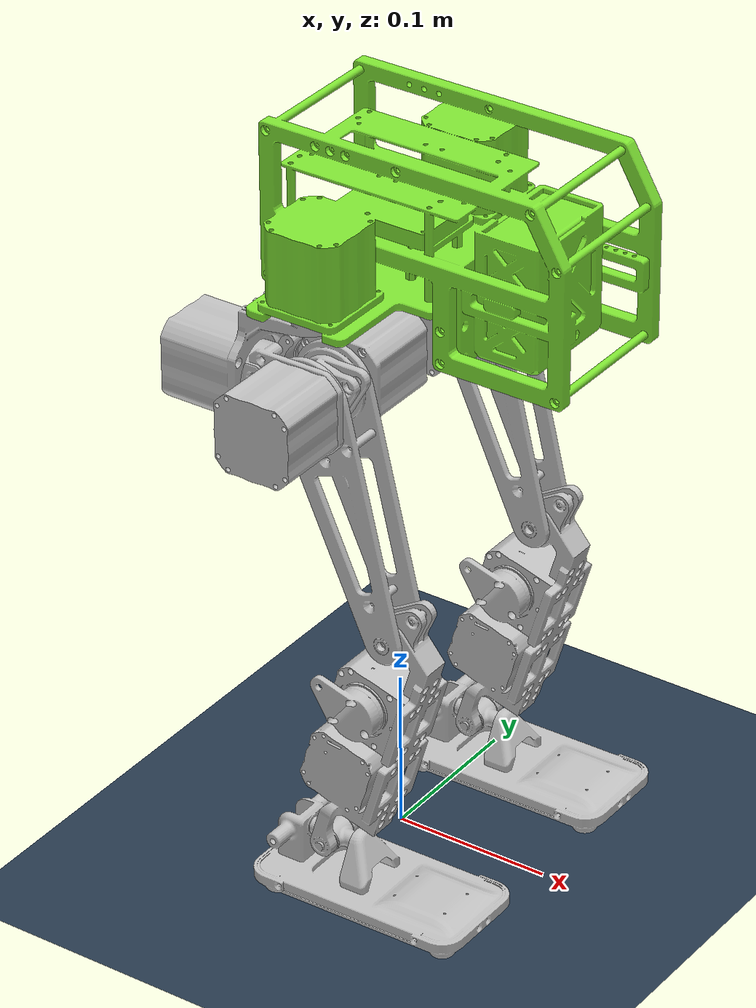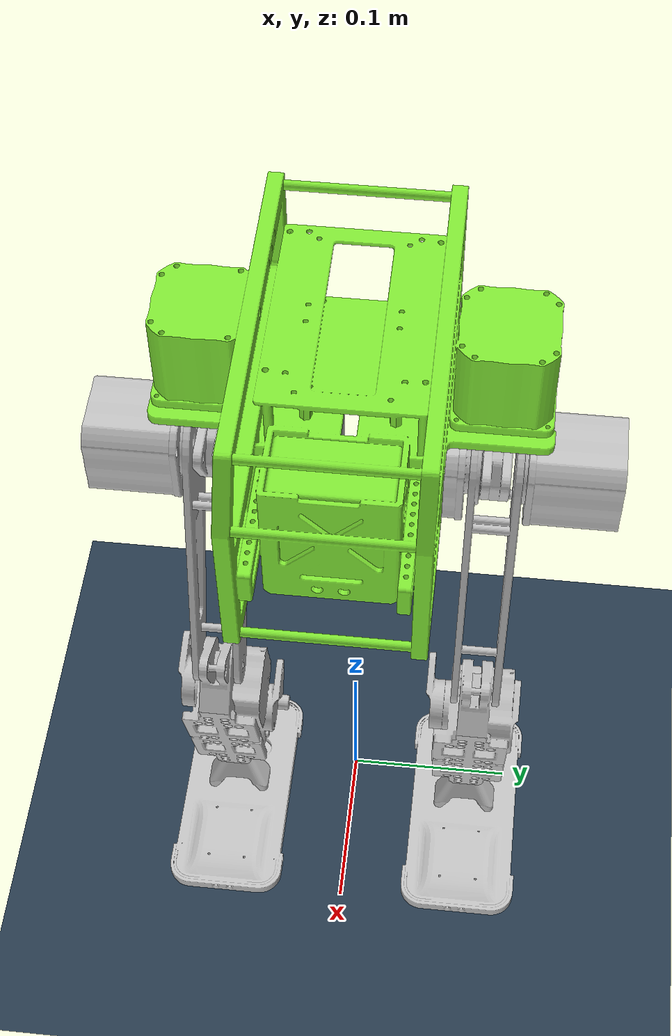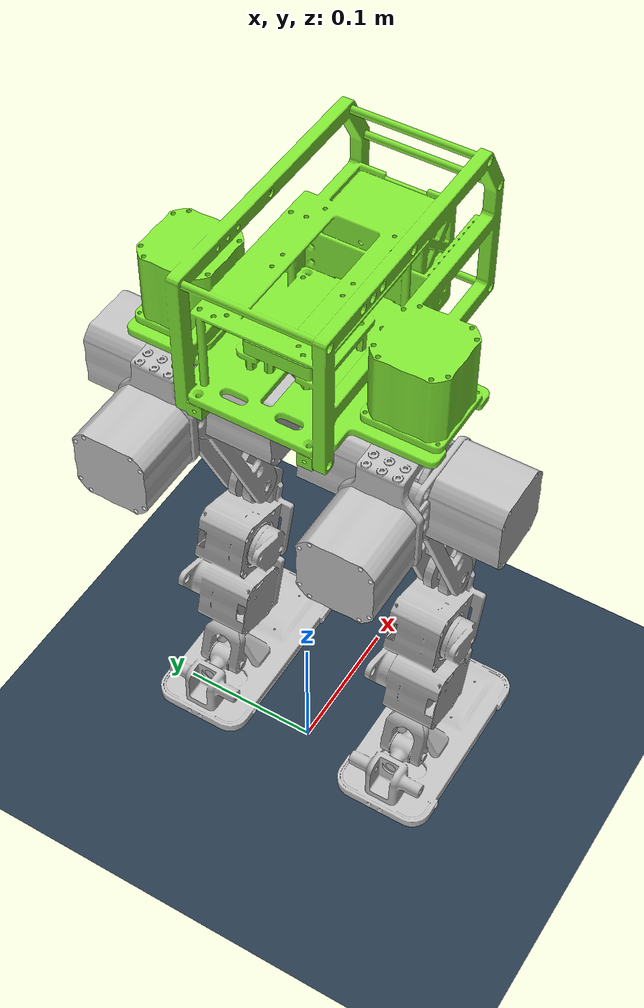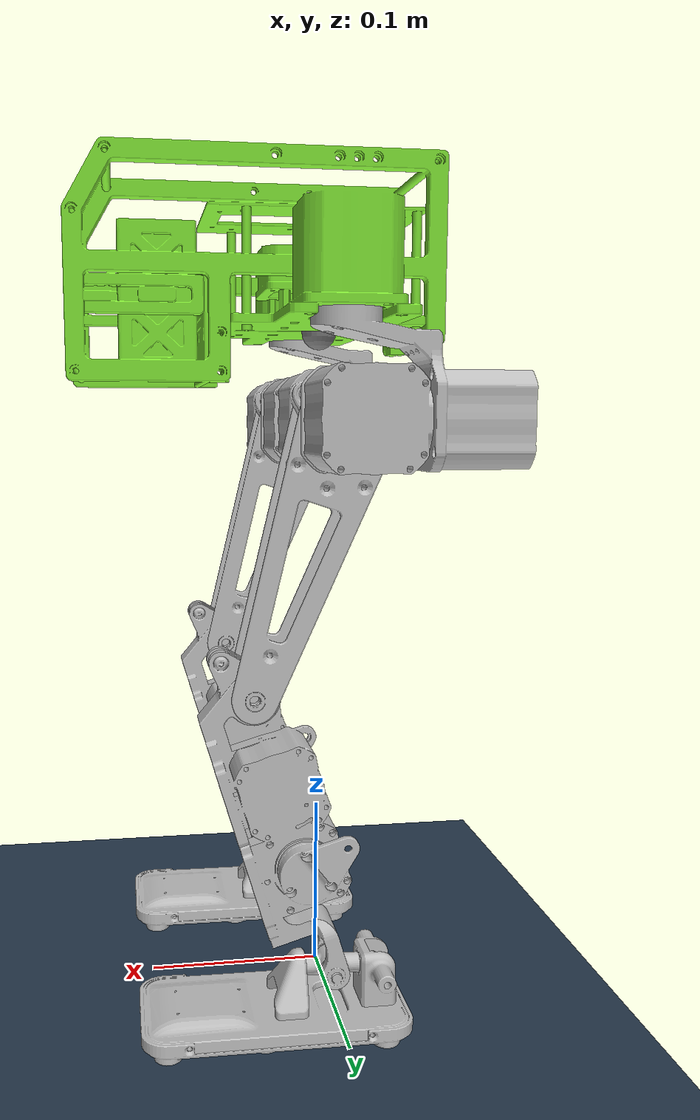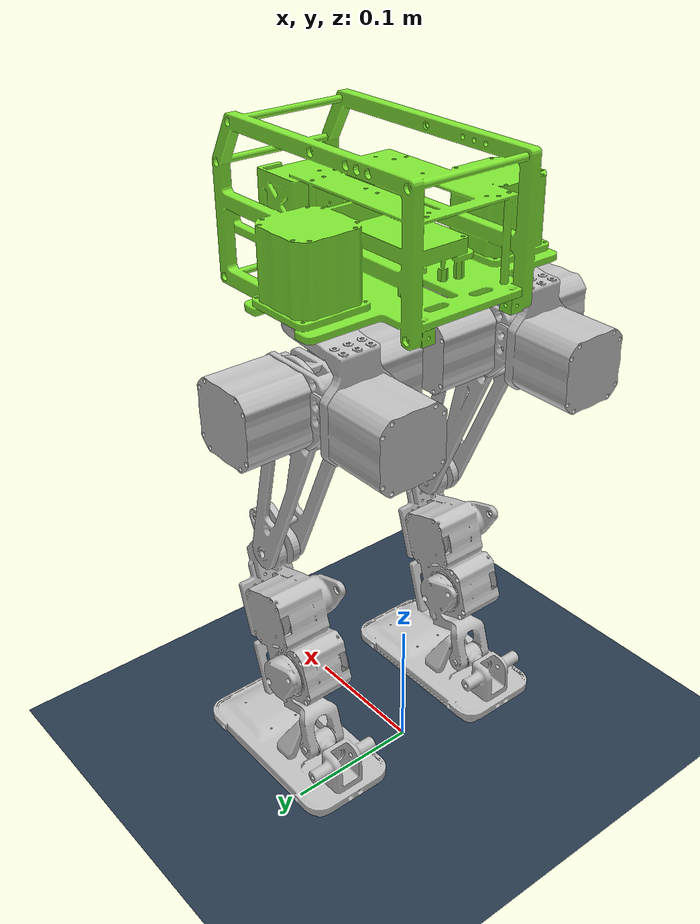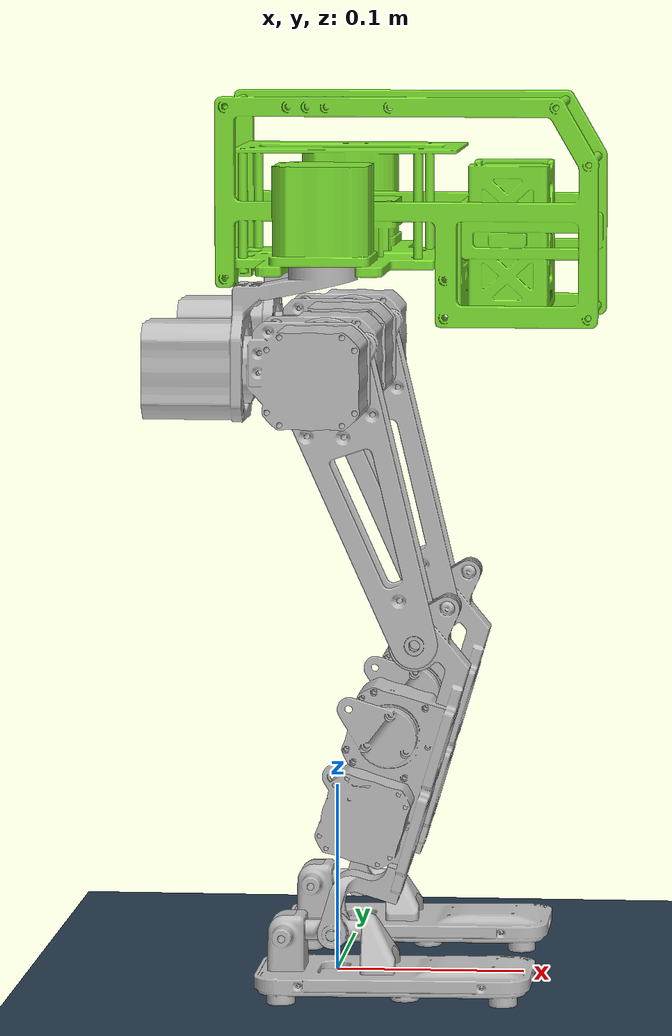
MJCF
<mujoco model="pai_12dof_v2_0312">
  <compiler angle="radian" meshdir="../meshes/" eulerseq="zyx"/>
    <option timestep='0.001' iterations='50' solver='PGS' gravity='0 0 -9.81'>
    <flag sensornoise="enable" frictionloss="enable"/>
    </option>
    <size njmax="500" nconmax="100" />

    <visual>
        <quality shadowsize='4096'/>
        <map znear='0.05'/>
    </visual>

    <default>
        <joint limited='true'/>
        <motor ctrllimited='true'/>
        <geom  condim='4' contype="1" conaffinity="15" solref='0.001 2' friction='0.9 0.2 0.2'/>
        <equality solref='0.001 2'/>
        <default class='visualgeom'>
            <geom material='visualgeom' condim='1' contype='0' conaffinity='0'/>
        </default>
        <default class='visualgeom2'>
            <geom material='visualgeom2' condim='1' contype='0' conaffinity='0'/>
        </default>
        <default class='obstacle'>
            <geom material='obstacle' condim='3' contype='1' conaffinity='15'/>
        </default>
    </default>
    <asset>
      <texture type="skybox" builtin="gradient" rgb1="0.3 0.5 0.7" rgb2="0 0 0" width="512" height="512"/>
      <texture name="texplane" type="2d" builtin="checker" rgb1=".2 .3 .4" rgb2=".1 0.15 0.2"
          width="512" height="512" mark="cross" markrgb=".8 .8 .8"/>
      <texture name="texplane2" type="2d" builtin="checker" rgb1="1 0.3137 0.1843" rgb2="0.0 0.30196 0.38039"
          width="512" height="512" mark="cross" markrgb=".8 .8 .8"/>

      <material name="matplane" reflectance="0." texture="texplane" texrepeat="1 1" texuniform="true"/>
      <material name="matplane2" reflectance="0.1" texture="texplane2" texrepeat="1 1" texuniform="true"/>

      <material name='obstacle'  rgba='0.9 0.6 0.2 1'/>
      <material name='visualgeom'  rgba='0.5 0.9 0.2 1'/>
      <material name='visualgeom2'  rgba='0.5 0.9 0.2 1'/>

      <mesh name="base_link" file="base_link.STL"/>
      <mesh name="r_hip_yaw_link" file="r_hip_yaw_link.STL"/>
      <mesh name="r_hip_roll_link" file="r_hip_roll_link.STL"/>
      <mesh name="r_thigh_link" file="r_thigh_link.STL"/>
      <mesh name="r_calf_link" file="r_calf_link.STL"/>
      <mesh name="r_ankle_pitch_link" file="r_ankle_pitch_link.STL"/>
      <mesh name="r_ankle_roll_link" file="r_ankle_roll_link.STL"/>
      <mesh name="l_hip_yaw_link" file="l_hip_yaw_link.STL"/>
      <mesh name="l_hip_roll_link" file="l_hip_roll_link.STL"/>
      <mesh name="l_thigh_link" file="l_thigh_link.STL"/>
      <mesh name="l_calf_link" file="l_calf_link.STL"/>
      <mesh name="l_ankle_pitch_link" file="l_ankle_pitch_link.STL"/>
      <mesh name="l_ankle_roll_link" file="l_ankle_roll_link.STL"/>

      <hfield name='hf0' nrow='200' ncol='200' size="10 5 0.2 .1"/>
      </asset>
  <worldbody>
    <light directional="true" diffuse=".4 .4 .4" specular="0.1 0.1 0.1" pos="0 0 5.0" dir="0 0 -1" castshadow="false"/>
    <light directional="true" diffuse=".6 .6 .6" specular="0.2 0.2 0.2" pos="0 0 4" dir="0 0 -1"/>
    <geom name="ground" type="plane" size="0 0 1" pos="0.001 0 0" quat="1 0 0 0" material="matplane" condim="1" conaffinity='15'/>

    <body name="base_link" pos="0.0 0.0 0.38">

      <geom type="mesh" mesh="base_link" group="1" class="visualgeom"/>

      <inertial pos="0.036389 -0.0000195 0.0235966" mass="1.4140796" diaginertia="0.0052145 0.0041695 0.007904" />
      <joint type='slide' axis='1 0 0' limited='false' />
      <joint type='slide' axis='0 1 0' limited='false' />
      <joint type='slide' axis='0 0 1' limited='false' />
      <joint type='ball' limited='false' />
      <site name='imu' size='0.01' pos='0.0 0 0.0'/>

      <geom type="mesh" contype="0" conaffinity="0" group="1" density="0" rgba="0.75294 0.75294 0.75294 1" mesh="base_link"/>
      <geom type="mesh" rgba="0.75294 0.75294 0.75294 1" mesh="base_link" class="visualgeom"/>

      <body name="r_hip_yaw_link" pos="0 -0.075 0">
        <inertial pos="-0.0578492 0 -0.0416749" quat="0.638398 0.304052 0.304052 0.638398" mass="0.388765" diaginertia="0.0004324 0.000431481 0.000133919"/>
        <joint name="right_hip_yaw_joint" pos="0 0 0" axis="0 0 1" limited="true" range="-1.6 0.75"/>
        <geom type="mesh" contype="0" conaffinity="0" group="1" density="0" rgba="0.75294 0.75294 0.75294 1" mesh="r_hip_yaw_link"/>
        <geom size="0.005 0.005 0.005" type="box" rgba="0.75294 0.75294 0.75294 1"/>
        <body name="r_hip_roll_link" pos="-0.04 0 -0.05">
          <inertial pos="0.0373373 0.0004272 0.0004287" quat="0.522079 0.520414 -0.478425 0.477192" mass="0.749522" diaginertia="0.00144387 0.00138144 0.000338391"/>
          <joint name="right_hip_roll_joint" pos="0 0 0" axis="1 0 0" limited="true" range="-1 0.5"/>
          <geom type="mesh" contype="0" conaffinity="0" group="1" density="0" rgba="0.75294 0.75294 0.75294 1" mesh="r_hip_roll_link"/>
          <geom size="0.005 0.005 0.005" type="box" rgba="0.75294 0.75294 0.75294 1"/>
          <body name="r_thigh_link" pos="0.04 0 0" quat="0.993105 0 -0.11723 0">
            <inertial pos="0.004364 -0.0013366 -0.0465535" quat="0.711964 -0.0246027 -0.0412528 0.700571" mass="0.14436" diaginertia="0.000442407 0.000439927 4.54667e-05"/>
            <joint name="right_hip_pitch_joint" pos="0 0 0" axis="0 -1 0" limited="true" range="-0.8 1.57"/>
            <geom type="mesh" contype="0" conaffinity="0" group="1" density="0" rgba="0.75294 0.75294 0.75294 1" mesh="r_thigh_link"/>
            <geom size="0.005 0.005 0.005" type="box" rgba="0.75294 0.75294 0.75294 1"/>
            <body name="r_calf_link" pos="0.014 0 -0.14935" quat="0.965614 0 0.259979 0">
              <inertial pos="0.0035389 0 -0.0714471" quat="0.707528 0.00267035 0.0054126 0.70666" mass="0.768122" diaginertia="0.00106741 0.00103721 0.00021498"/>
              <joint name="right_knee_joint" pos="0 0 0" axis="0 1 0" limited="true" range="-0.526 1.57"/>
              <geom type="mesh" contype="0" conaffinity="0" group="1" density="0" rgba="0.75294 0.75294 0.75294 1" mesh="r_calf_link"/>
              <geom size="0.005 0.005 0.005" type="box" rgba="0.75294 0.75294 0.75294 1"/>
              <body name="r_ankle_pitch_link" pos="0.0025 0 -0.15845" quat="0.98892 0 -0.148449 0">
                <inertial pos="0 0 0" quat="0.5 0.5 0.5 0.5" mass="0.0088647" diaginertia="1e-06 1e-06 2e-07"/>
                <joint name="right_ankle_pitch_joint" pos="0 0 0" axis="0 -1 0" limited="true" range="-0.95 1.2"/>
                <geom type="mesh" contype="0" conaffinity="0" group="1" density="0" rgba="0.75294 0.75294 0.75294 1" mesh="r_ankle_pitch_link"/>
                <geom size="0.005 0.005 0.005" type="box" rgba="0.75294 0.75294 0.75294 1"/>
                <body name="r_ankle_roll_link">
                  <inertial pos="0.0240775 0 -0.018709" quat="0 0.731367 0 0.681984" mass="0.172893" diaginertia="0.000379376 0.0003287 7.63237e-05"/>
                  <joint name="right_ankle_roll_joint" pos="0 0 0" axis="1 0 0" limited="true" range="-0.4 0.4"/>
                  <geom type="mesh" contype="0" conaffinity="0" group="1" density="0" rgba="0.75294 0.75294 0.75294 1" mesh="r_ankle_roll_link"/>
                  <geom type="mesh" rgba="0.75294 0.75294 0.75294 1" mesh="r_ankle_roll_link"/>
                </body>
              </body>
            </body>
          </body>
        </body>
      </body>
      <body name="l_hip_yaw_link" pos="0 0.075 0">
        <inertial pos="-0.0578492 0 -0.0416749" quat="0.638398 0.304052 0.304052 0.638398" mass="0.19436" diaginertia="0.0004324 0.000431481 0.000133919"/>
        <joint name="left_hip_yaw_joint" pos="0 0 0" axis="0 0 1" limited="true" range="-0.6 1.57"/>
        <geom type="mesh" contype="0" conaffinity="0" group="1" density="0" rgba="0.75294 0.75294 0.75294 1" mesh="l_hip_yaw_link"/>
        <geom size="0.005 0.005 0.005" type="box" rgba="0.75294 0.75294 0.75294 1"/>
        <body name="l_hip_roll_link" pos="-0.04 0 -0.05">
          <inertial pos="0.0373373 -0.0004323 0.0004287" quat="0.521666 0.520835 -0.47816 0.47745" mass="0.74952" diaginertia="0.00144387 0.00138143 0.000338398"/>
          <joint name="left_hip_roll_joint" pos="0 0 0" axis="1 0 0" limited="true" range="-0.5 1"/>
          <geom type="mesh" contype="0" conaffinity="0" group="1" density="0" rgba="0.75294 0.75294 0.75294 1" mesh="l_hip_roll_link"/>
          <geom size="0.005 0.005 0.005" type="box" rgba="0.75294 0.75294 0.75294 1"/>
          <body name="l_thigh_link" pos="0.04 0 0" quat="0.993105 0 -0.11723 0">
            <inertial pos="0.004364 0.0013366 -0.046554" quat="0.700571 -0.0412528 -0.0246027 0.711964" mass="0.14436" diaginertia="0.000442407 0.000439927 4.54667e-05"/>
            <joint name="left_hip_pitch_joint" pos="0 0 0" axis="0 1 0" limited="true" range="-1.57 0.8"/>
            <geom type="mesh" contype="0" conaffinity="0" group="1" density="0" rgba="0.75294 0.75294 0.75294 1" mesh="l_thigh_link"/>
            <geom size="0.005 0.005 0.005" type="box" rgba="0.75294 0.75294 0.75294 1"/>
            <body name="l_calf_link" pos="0.014 0 -0.14935" quat="0.965614 0 0.259979 0">
              <inertial pos="0.0035389 0 -0.07142" quat="0.707528 0.00267035 0.0054126 0.70666" mass="0.768122" diaginertia="0.00106741 0.00103721 0.00021498"/>
              <joint name="left_knee_joint" pos="0 0 0" axis="0 -1 0" limited="true" range="-1.57 0.526"/>
              <geom type="mesh" contype="0" conaffinity="0" group="1" density="0" rgba="0.75294 0.75294 0.75294 1" mesh="l_calf_link"/>
              <geom size="0.005 0.005 0.005" type="box" rgba="0.75294 0.75294 0.75294 1"/>
              <body name="l_ankle_pitch_link" pos="0.0025 0 -0.15845" quat="0.98892 0 -0.148449 0">
                <inertial pos="0 0 0" quat="0.5 0.5 0.5 0.5" mass="0.0088647" diaginertia="1e-06 1e-06 2e-07"/>
                <joint name="left_ankle_pitch_joint" pos="0 0 0" axis="0 1 0" limited="true" range="-1.2 0.8"/>
                <geom type="mesh" contype="0" conaffinity="0" group="1" density="0" rgba="0.75294 0.75294 0.75294 1" mesh="l_ankle_pitch_link"/>
                <geom size="0.005 0.005 0.005" type="box" rgba="0.75294 0.75294 0.75294 1"/>
                <body name="l_ankle_roll_link">
                  <inertial pos="0.0240775 0 -0.018709" quat="0 0.731367 0 0.681984" mass="0.172893" diaginertia="0.000379376 0.0003287 7.63237e-05"/>
                  <joint name="left_ankle_roll_joint" pos="0 0 0" axis="1 0 0" limited="true" range="-0.4 0.4"/>
                  <geom type="mesh" contype="0" conaffinity="0" group="1" density="0" rgba="0.75294 0.75294 0.75294 1" mesh="l_ankle_roll_link"/>
                  <geom type="mesh" rgba="0.75294 0.75294 0.75294 1" mesh="l_ankle_roll_link"/>
                </body>
              </body>
            </body>
          </body>
        </body>
      </body>
    </body>
  </worldbody>
  <actuator>
    <motor name="right_hip_yaw_joint" joint="right_hip_yaw_joint" gear="1" ctrllimited="true" ctrlrange="-200 200"/>
    <motor name="right_hip_roll_joint" joint="right_hip_roll_joint" gear="1" ctrllimited="true" ctrlrange="-200 200"/>
    <motor name="right_hip_pitch_joint" joint="right_hip_pitch_joint" gear="1" ctrllimited="true" ctrlrange="-200 200"/>
    <motor name="right_knee_joint" joint="right_knee_joint" gear="1" ctrllimited="true" ctrlrange="-200 200"/>
    <motor name="right_ankle_pitch_joint" joint="right_ankle_pitch_joint" gear="1" ctrllimited="true" ctrlrange="-200 200"/>
    <motor name="right_ankle_roll_joint" joint="right_ankle_roll_joint" gear="1" ctrllimited="true" ctrlrange="-200 200"/>
    <motor name="left_hip_yaw_joint" joint="left_hip_yaw_joint" gear="1" ctrllimited="true" ctrlrange="-200 200"/>
    <motor name="left_hip_roll_joint" joint="left_hip_roll_joint" gear="1" ctrllimited="true" ctrlrange="-200 200"/>
    <motor name="left_hip_pitch_joint" joint="left_hip_pitch_joint" gear="1" ctrllimited="true" ctrlrange="-200 200"/>
    <motor name="left_knee_joint" joint="left_knee_joint" gear="1" ctrllimited="true" ctrlrange="-200 200"/>
    <motor name="left_ankle_pitch_joint" joint="left_ankle_pitch_joint" gear="1" ctrllimited="true" ctrlrange="-200 200"/>
    <motor name="left_ankle_roll_joint" joint="left_ankle_roll_joint" gear="1" ctrllimited="true" ctrlrange="-200 200"/>
  </actuator>

  <sensor>
    <!-- Position sensors -->
    <actuatorpos name="right_hip_yaw_joint_p" actuator="right_hip_yaw_joint" user="13"/>
    <actuatorpos name="right_hip_roll_joint_p" actuator="right_hip_roll_joint" user="13"/>
    <actuatorpos name="right_hip_pitch_joint_p" actuator="right_hip_pitch_joint" user="13"/>
    <actuatorpos name="right_knee_joint_p" actuator="right_knee_joint" user="13"/>
    <actuatorpos name="right_ankle_pitch_joint_p" actuator="right_ankle_pitch_joint" user="13"/>
    <actuatorpos name="right_ankle_roll_joint_p" actuator="right_ankle_roll_joint" user="13"/>
    <actuatorpos name="left_hip_yaw_joint_p" actuator="left_hip_yaw_joint" user="13"/>
    <actuatorpos name="left_hip_roll_joint_p" actuator="left_hip_roll_joint" user="13"/>
    <actuatorpos name="left_hip_pitch_joint_p" actuator="left_hip_pitch_joint" user="13"/>
    <actuatorpos name="left_knee_joint_p" actuator="left_knee_joint" user="13"/>
    <actuatorpos name="left_ankle_pitch_joint_p" actuator="left_ankle_pitch_joint" user="13"/>
    <actuatorpos name="left_ankle_roll_joint_p" actuator="left_ankle_roll_joint" user="13"/>

    <!-- Velocity sensors -->
    <actuatorvel name="right_hip_yaw_joint_v" actuator="right_hip_yaw_joint" user="13" noise="1e-3"/>
    <actuatorvel name="right_hip_roll_joint_v" actuator="right_hip_roll_joint" user="13" noise="1e-3"/>
    <actuatorvel name="right_hip_pitch_joint_v" actuator="right_hip_pitch_joint" user="13" noise="1e-3"/>
    <actuatorvel name="right_knee_joint_v" actuator="right_knee_joint" user="13" noise="1e-3"/>
    <actuatorvel name="right_ankle_pitch_joint_v" actuator="right_ankle_pitch_joint" user="13" noise="1e-3"/>
    <actuatorvel name="right_ankle_roll_joint_v" actuator="right_ankle_roll_joint" user="13" noise="1e-3"/>
    <actuatorvel name="left_hip_yaw_joint_v" actuator="left_hip_yaw_joint" user="13" noise="1e-3"/>
    <actuatorvel name="left_hip_roll_joint_v" actuator="left_hip_roll_joint" user="13" noise="1e-3"/>
    <actuatorvel name="left_hip_pitch_joint_v" actuator="left_hip_pitch_joint" user="13" noise="1e-3"/>
    <actuatorvel name="left_knee_joint_v" actuator="left_knee_joint" user="13" noise="1e-3"/>
    <actuatorvel name="left_ankle_pitch_joint_v" actuator="left_ankle_pitch_joint" user="13" noise="1e-3"/>
    <actuatorvel name="left_ankle_roll_joint_v" actuator="left_ankle_roll_joint" user="13" noise="1e-3"/>

    <!-- Force sensors -->
    <actuatorfrc name="right_hip_yaw_joint_f" actuator="right_hip_yaw_joint" user="13" noise="1e-3"/>
    <actuatorfrc name="right_hip_roll_joint_f" actuator="right_hip_roll_joint" user="13" noise="1e-3"/>
    <actuatorfrc name="right_hip_pitch_joint_f" actuator="right_hip_pitch_joint" user="13" noise="1e-3"/>
    <actuatorfrc name="right_knee_joint_f" actuator="right_knee_joint" user="13" noise="1e-3"/>
    <actuatorfrc name="right_ankle_pitch_joint_f" actuator="right_ankle_pitch_joint" user="13" noise="1e-3"/>
    <actuatorfrc name="right_ankle_roll_joint_f" actuator="right_ankle_roll_joint" user="13" noise="1e-3"/>
    <actuatorfrc name="left_hip_yaw_joint_f" actuator="left_hip_yaw_joint" user="13" noise="1e-3"/>
    <actuatorfrc name="left_hip_roll_joint_f" actuator="left_hip_roll_joint" user="13" noise="1e-3"/>
    <actuatorfrc name="left_hip_pitch_joint_f" actuator="left_hip_pitch_joint" user="13" noise="1e-3"/>
    <actuatorfrc name="left_knee_joint_f" actuator="left_knee_joint" user="13" noise="1e-3"/>
    <actuatorfrc name="left_ankle_pitch_joint_f" actuator="left_ankle_pitch_joint" user="13" noise="1e-3"/>
    <actuatorfrc name="left_ankle_roll_joint_f" actuator="left_ankle_roll_joint" user="13" noise="1e-3"/>

    <framequat     name='orientation' objtype='site' noise='0.001' objname='imu'/>
    <framepos     name='position' objtype='site' noise='0.001' objname='imu'/>
    <gyro          name='angular-velocity'    site='imu' noise='0.005' cutoff='34.9'/>
    <velocimeter   name='linear-velocity'     site='imu' noise='0.001' cutoff='30'/>
    <accelerometer name='linear-acceleration' site='imu' noise='0.005' cutoff='157'/>
    <magnetometer  name='magnetometer'        site='imu'/>

  </sensor>
</mujoco>
